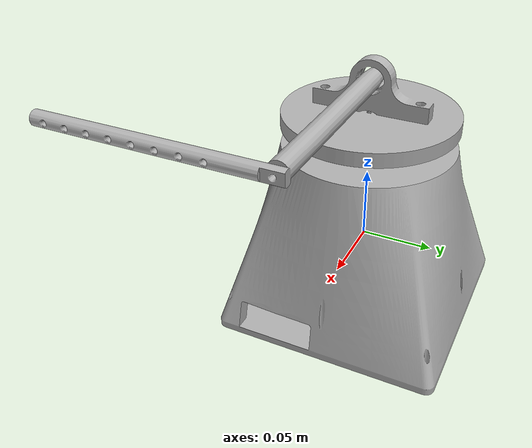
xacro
<?xml version="1.0" ?>
<robot name="sim_mount" xmlns:xacro="http://www.ros.org/wiki/xacro">

<xacro:include filename="../urdf/materials.xacro" />
<xacro:include filename="../urdf/sim_mount.trans" />
<xacro:include filename="../urdf/sim_mount.gazebo" />

<!-- BASE LINK -->
<link name="base_link">
  <inertial>
    <origin xyz="-0.0008958 0.0007694 0.0041098" rpy="0 0 0"/>
    <mass value="1.00914657"/>
    <inertia ixx="0.004215" iyy="0.00418" izz="0.004598" ixy="-2.7e-05" iyz="3.9e-05" ixz="-4.1e-05"/>
  </inertial>
  <visual>
    <origin xyz="0 0 0" rpy="0 0 0"/>
    <geometry>
      <mesh filename="../meshes/base_link.stl" scale="0.001 0.001 0.001"/>
    </geometry>
    <material name="silver"/>
  </visual>
  <collision>
    <origin xyz="0 0 0" rpy="0 0 0"/>
    <geometry>
      <mesh filename="../meshes/base_link.stl" scale="0.001 0.001 0.001"/>
    </geometry>
  </collision>
</link>

<!-- TURNTABLE PLATE -->
<link name="plate_1">
  <inertial>
    <origin xyz="0.0 0.0 0.0058" rpy="0 0 0"/>
    <mass value="0.170205"/>
    <inertia ixx="0.000143" iyy="0.000137" izz="0.000261" ixy="0" iyz="0" ixz="0"/>
  </inertial>
  <visual>
    <origin xyz="0.0 0.0 -0.086736" rpy="0 0 0"/>
    <geometry>
      <mesh filename="../meshes/plate_1.stl" scale="0.001 0.001 0.001"/>
    </geometry>
    <material name="silver"/>
  </visual>
  <collision>
    <origin xyz="0.0 0.0 -0.086736" rpy="0 0 0"/>
    <geometry>
      <mesh filename="../meshes/plate_1.stl" scale="0.001 0.001 0.001"/>
    </geometry>
  </collision>
</link>

<!-- PENDULUM SHAFT / ARM (MATCHED TO EXACT STL VERTICES) -->
<link name="main_shaft_1">
  <inertial>
    <origin xyz="0.0830 0.0 0.0" rpy="0 0 0"/>
    <mass value="0.038773"/>
    <inertia ixx="7.9e-05" iyy="9.6e-05" izz="0.000175" ixy="5.1e-05" iyz="0.0" ixz="0.0"/>
  </inertial>
  <visual>
    <origin xyz="0.0 0.000027 -0.119726" rpy="0 0 0"/>
    <geometry>
      <mesh filename="../meshes/main_shaft_1.stl" scale="0.001 0.001 0.001"/>
    </geometry>
    <material name="silver"/>
  </visual>
  <collision>
    <origin xyz="0.0 0.000027 -0.119726" rpy="0 0 0"/>
    <geometry>
      <mesh filename="../meshes/main_shaft_1.stl" scale="0.001 0.001 0.001"/>
    </geometry>
  </collision>
</link>

<!-- JOINT 1: Base to Plate -->
<joint name="base_to_plate" type="continuous">
  <origin xyz="0.0 0.0 0.086736" rpy="0 0 0"/>
  <parent link="base_link"/>
  <child link="plate_1"/>
  <axis xyz="0.0 0.0 1.0"/>
</joint>

<!-- JOINT 2: Plate to Shaft (EXACT CAD AXIS: 32.990 mm) -->
<joint name="plate_to_shaft" type="continuous">
  <origin xyz="0.0 -0.000027 0.032990" rpy="0 0 0"/>
  <parent link="plate_1"/>
  <child link="main_shaft_1"/>
  <axis xyz="1.0 0.0 0.0"/>
</joint>

</robot>

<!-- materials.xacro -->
<robot name="sim_mount" xmlns:xacro="http://www.ros.org/wiki/xacro" >

<material name="silver">
  <color rgba="0.700 0.700 0.700 1.000"/>
</material>

</robot>

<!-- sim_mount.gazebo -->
<robot name="sim_mount" xmlns:xacro="http://www.ros.org/wiki/xacro" >

<xacro:property name="body_color" value="Gazebo/Silver" />

<gazebo>
  <plugin name="control" filename="libgazebo_ros_control.so"/>
</gazebo>
<gazebo reference="base_link">
  <material>${body_color}</material>
  <mu1>0.2</mu1>
  <mu2>0.2</mu2>
  <self_collide>true</self_collide>
  <gravity>true</gravity>
</gazebo>

<gazebo reference="plate_1">
  <material>${body_color}</material>
  <mu1>0.2</mu1>
  <mu2>0.2</mu2>
  <self_collide>true</self_collide>
</gazebo>

<gazebo reference="main_shaft_1">
  <material>${body_color}</material>
  <mu1>0.2</mu1>
  <mu2>0.2</mu2>
  <self_collide>true</self_collide>
</gazebo>

</robot>
